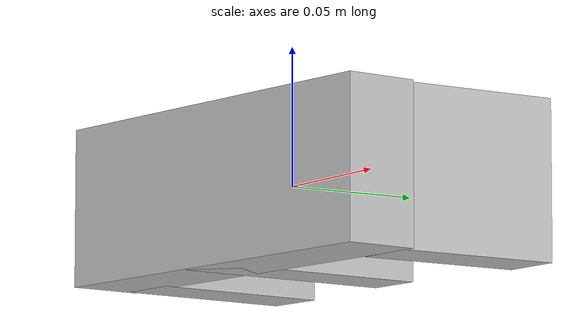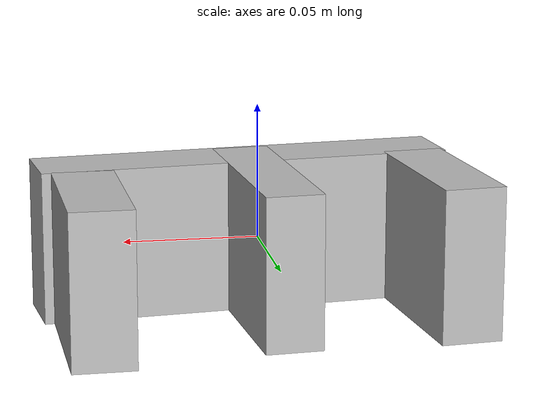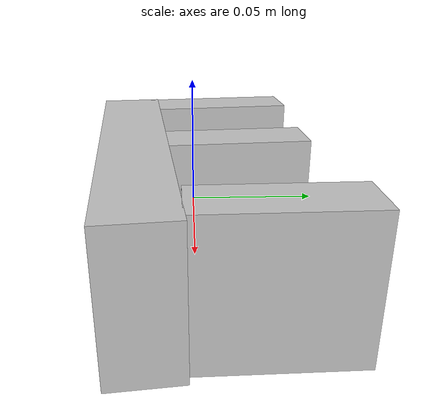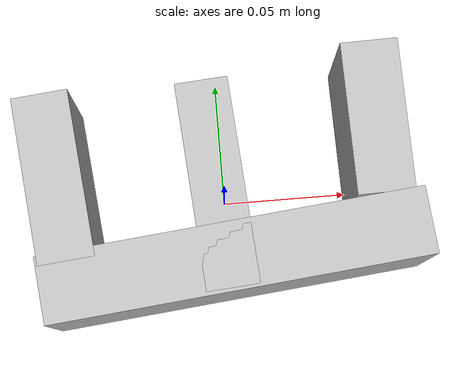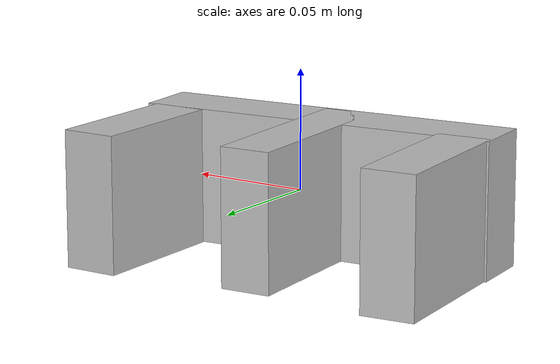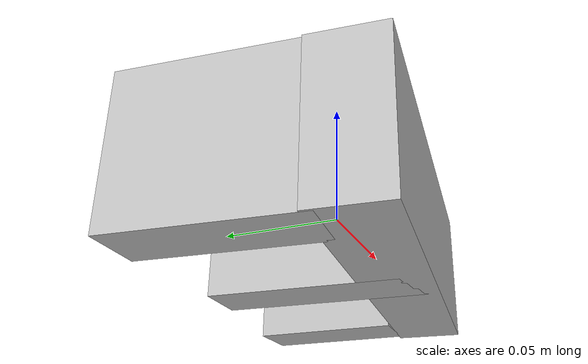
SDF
<?xml version="1.0"?>
<sdf version="1.7">
  <model name="E_shape_video">
    <link name="E_shape_video">
      <inertial>
        <pose>-0.000643 -0.003863 -0.002270 0 0 0</pose>
        <mass>0.05</mass>
        <inertia>
          <ixx>4.85702923e-05</ixx>
          <iyy>0.000133908922</iyy>
          <izz>0.000154641361</izz>
          <ixy>-8.64092985e-06</ixy>
          <ixz>-7.30369312e-08</ixz>
          <iyz>-4.38427874e-07</iyz>
        </inertia>
      </inertial>
      <visual name="box_0">
        <pose>0.002830 -0.023990 -0.002270 0 0 -1.467560</pose>
        <geometry>
          <box><size>0.027500 0.156800 0.057260</size></box>
        </geometry>
        <material>
          <diffuse>0.75 0.75 0.75 1</diffuse>
        </material>
      </visual>
      <collision name="box_0_volume">
        <pose>0.002830 -0.023990 -0.002270 0 0 -1.467560</pose>
        <geometry>
          <box><size>0.027500 0.156800 0.057260</size></box>
        </geometry>
        <drake:proximity_properties>
          <drake:compliant_hydroelastic/>
          <drake:hydroelastic_modulus> 3.0e7 </drake:hydroelastic_modulus>
          <drake:mesh_resolution_hint> 0.02 </drake:mesh_resolution_hint>
          <drake:hunt_crossley_dissipation>10</drake:hunt_crossley_dissipation>
          <drake:mu_dynamic>0.3</drake:mu_dynamic>
        </drake:proximity_properties>
      </collision>
      <visual name="box_1">
        <pose>-0.067340 0.012660 -0.002270 0 0 -1.468260</pose>
        <geometry>
          <box><size>0.068000 0.022900 0.057260</size></box>
        </geometry>
        <material>
          <diffuse>0.75 0.75 0.75 1</diffuse>
        </material>
      </visual>
      <collision name="box_1_volume">
        <pose>-0.067340 0.012660 -0.002270 0 0 -1.468260</pose>
        <geometry>
          <box><size>0.068000 0.022900 0.057260</size></box>
        </geometry>
        <drake:proximity_properties>
          <drake:compliant_hydroelastic/>
          <drake:hydroelastic_modulus> 3.0e7 </drake:hydroelastic_modulus>
          <drake:mesh_resolution_hint> 0.02 </drake:mesh_resolution_hint>
          <drake:hunt_crossley_dissipation>10</drake:hunt_crossley_dissipation>
          <drake:mu_dynamic>0.3</drake:mu_dynamic>
        </drake:proximity_properties>
      </collision>
      <visual name="box_2">
        <pose>0.063530 0.027170 -0.002270 0 0 -1.546800</pose>
        <geometry>
          <box><size>0.062000 0.023200 0.057260</size></box>
        </geometry>
        <material>
          <diffuse>0.75 0.75 0.75 1</diffuse>
        </material>
      </visual>
      <collision name="box_2_volume">
        <pose>0.063530 0.027170 -0.002270 0 0 -1.546800</pose>
        <geometry>
          <box><size>0.062000 0.023200 0.057260</size></box>
        </geometry>
        <drake:proximity_properties>
          <drake:compliant_hydroelastic/>
          <drake:hydroelastic_modulus> 3.0e7 </drake:hydroelastic_modulus>
          <drake:mesh_resolution_hint> 0.02 </drake:mesh_resolution_hint>
          <drake:hunt_crossley_dissipation>10</drake:hunt_crossley_dissipation>
          <drake:mu_dynamic>0.3</drake:mu_dynamic>
        </drake:proximity_properties>
      </collision>
      <visual name="box_3">
        <pose>-0.002540 0.005230 -0.002270 0 0 0.078530</pose>
        <geometry>
          <box><size>0.021500 0.084000 0.057260</size></box>
        </geometry>
        <material>
          <diffuse>0.75 0.75 0.75 1</diffuse>
        </material>
      </visual>
      <collision name="box_3_volume">
        <pose>-0.002540 0.005230 -0.002270 0 0 0.078530</pose>
        <geometry>
          <box><size>0.021500 0.084000 0.057260</size></box>
        </geometry>
        <drake:proximity_properties>
          <drake:compliant_hydroelastic/>
          <drake:hydroelastic_modulus> 3.0e7 </drake:hydroelastic_modulus>
          <drake:mesh_resolution_hint> 0.02 </drake:mesh_resolution_hint>
          <drake:hunt_crossley_dissipation>10</drake:hunt_crossley_dissipation>
          <drake:mu_dynamic>0.3</drake:mu_dynamic>
        </drake:proximity_properties>
      </collision>
    </link>
  </model>
</sdf>
